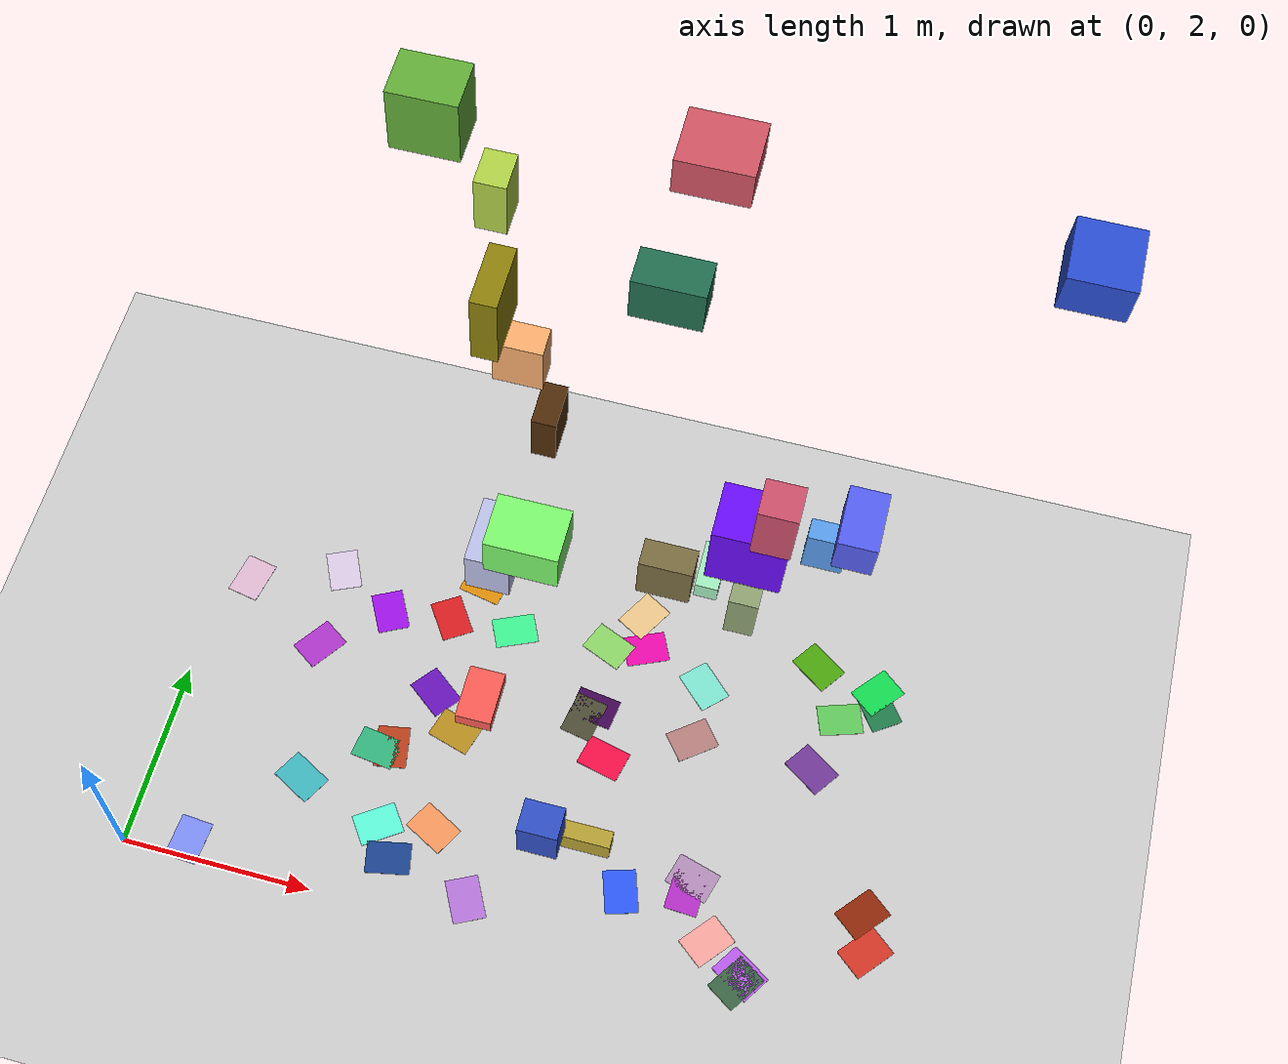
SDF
<sdf version="1.9">
 <world name="default">
  <model name="ground_plane">
   <static>true</static>
   <link name="link">
    <collision name="collision">
     <geometry><plane><normal>0 0 1</normal><size>1 1</size></plane></geometry>
    </collision>
    <visual name="visual">
     <geometry><plane><normal>0 0 1</normal><size>500 500</size></plane></geometry>
     <material>
      <ambient>0.8 0.8 0.8 1</ambient>
      <diffuse>0.8 0.8 0.8 1</diffuse>
      <specular>0.8 0.8 0.8 1</specular>
     </material>
    </visual>
    <inertial>
     <mass>1</mass>
     <inertia><ixx>1</ixx><ixy>0</ixy><ixz>0</ixz><iyy>1</iyy><iyz>0</iyz><izz>1</izz></inertia>
    </inertial>
   </link>
  </model>
  <model name="vio_landmark_4">
   <static>true</static>
   <pose>2.370946086831151 3.603568981077167 4.1404926267973075 0 0 0</pose>
   <link name="landmark">
    <visual name="box">
     <geometry><box><size>0.2795742839165804 0.23677774113252498 0.15660608165361206</size></box></geometry>
     <material>
      <ambient>0.8178608579160832 0.32771409896818304 0.3856673557343917 1</ambient>
      <diffuse>0.8178608579160832 0.32771409896818304 0.3856673557343917 1</diffuse>
     </material>
    </visual>
    <collision name="box">
     <geometry><box><size>0.2795742839165804 0.23677774113252498 0.15660608165361206</size></box></geometry>
    </collision>
   </link>
  </model>
  <model name="vio_landmark_9">
   <static>true</static>
   <pose>2.6230435518524304 3.202668108795817 2.057954493219551 0 0 0</pose>
   <link name="landmark">
    <visual name="box">
     <geometry><box><size>0.09970207891658353 0.2193948262190606 0.08942269251568812</size></box></geometry>
     <material>
      <ambient>0.6371044679635045 0.9238934703578437 0.7449748719432737 1</ambient>
      <diffuse>0.6371044679635045 0.9238934703578437 0.7449748719432737 1</diffuse>
     </material>
    </visual>
    <collision name="box">
     <geometry><box><size>0.09970207891658353 0.2193948262190606 0.08942269251568812</size></box></geometry>
    </collision>
   </link>
  </model>
  <model name="vio_landmark_10">
   <static>true</static>
   <pose>2.138854517946935 2.2545616455574944 1.0374150145814094 0 0 0</pose>
   <link name="landmark">
    <visual name="box">
     <geometry><box><size>0.19111792528161858 0.15823154075160312 0.25378358252799094</size></box></geometry>
     <material>
      <ambient>0.18490734483723215 0.30866854836649965 0.7710220489893403 1</ambient>
      <diffuse>0.18490734483723215 0.30866854836649965 0.7710220489893403 1</diffuse>
     </material>
    </visual>
    <collision name="box">
     <geometry><box><size>0.19111792528161858 0.15823154075160312 0.25378358252799094</size></box></geometry>
    </collision>
   </link>
  </model>
  <model name="vio_landmark_11">
   <static>true</static>
   <pose>2.7891176703076654 3.315285663557767 1.7152525724528496 0 0 0</pose>
   <link name="landmark">
    <visual name="box">
     <geometry><box><size>0.1320885522402665 0.255460419186655 0.2708116082599149</size></box></geometry>
     <material>
      <ambient>0.5575309282547783 0.6334797692749219 0.4442420330304337 1</ambient>
      <diffuse>0.5575309282547783 0.6334797692749219 0.4442420330304337 1</diffuse>
     </material>
    </visual>
    <collision name="box">
     <geometry><box><size>0.1320885522402665 0.255460419186655 0.2708116082599149</size></box></geometry>
    </collision>
   </link>
  </model>
  <model name="vio_landmark_16">
   <static>true</static>
   <pose>1.9465094470825615 2.7202543734946287 2.83502094072045 0 0 0</pose>
   <link name="landmark">
    <visual name="box">
     <geometry><box><size>0.29462341904940376 0.22644796169689996 0.19710107083741374</size></box></geometry>
     <material>
      <ambient>0.48544354762706 0.9694558172058504 0.4214892360053247 1</ambient>
      <diffuse>0.48544354762706 0.9694558172058504 0.4214892360053247 1</diffuse>
     </material>
    </visual>
    <collision name="box">
     <geometry><box><size>0.29462341904940376 0.22644796169689996 0.19710107083741374</size></box></geometry>
    </collision>
   </link>
  </model>
  <model name="vio_landmark_19">
   <static>true</static>
   <pose>1.877126461623658 3.3000720894933764 2.7759876341766714 0 0 0</pose>
   <link name="landmark">
    <visual name="box">
     <geometry><box><size>0.10170459680282255 0.19284788619064502 0.22981286475033208</size></box></geometry>
     <material>
      <ambient>0.3134249808974049 0.170987625439518 0.038284662760652954 1</ambient>
      <diffuse>0.3134249808974049 0.170987625439518 0.038284662760652954 1</diffuse>
     </material>
    </visual>
    <collision name="box">
     <geometry><box><size>0.10170459680282255 0.19284788619064502 0.22981286475033208</size></box></geometry>
    </collision>
   </link>
  </model>
  <model name="vio_landmark_25">
   <static>true</static>
   <pose>2.2887853095887856 3.3997144154624968 3.646768896638865 0 0 0</pose>
   <link name="landmark">
    <visual name="box">
     <geometry><box><size>0.2767317482694681 0.15674135461344424 0.19976900210306192</size></box></geometry>
     <material>
      <ambient>0.12901171565809047 0.4294346864572889 0.31009301270686407 1</ambient>
      <diffuse>0.12901171565809047 0.4294346864572889 0.31009301270686407 1</diffuse>
     </material>
    </visual>
    <collision name="box">
     <geometry><box><size>0.2767317482694681 0.15674135461344424 0.19976900210306192</size></box></geometry>
    </collision>
   </link>
  </model>
  <model name="vio_landmark_29">
   <static>true</static>
   <pose>1.6319476546174094 3.445762857621733 3.914232768123484 0 0 0</pose>
   <link name="landmark">
    <visual name="box">
     <geometry><box><size>0.11991886087015154 0.15398315070084104 0.24179815717374847</size></box></geometry>
     <material>
      <ambient>0.6896176604098586 0.8222177459021623 0.27267863111718366 1</ambient>
      <diffuse>0.6896176604098586 0.8222177459021623 0.27267863111718366 1</diffuse>
     </material>
    </visual>
    <collision name="box">
     <geometry><box><size>0.11991886087015154 0.15398315070084104 0.24179815717374847</size></box></geometry>
    </collision>
   </link>
  </model>
  <model name="vio_landmark_45">
   <static>true</static>
   <pose>1.8677772837458804 2.919673336145708 3.7559673025293927 0 0 0</pose>
   <link name="landmark">
    <visual name="box">
     <geometry><box><size>0.1794754611056314 0.11096249770346325 0.20498965172216438</size></box></geometry>
     <material>
      <ambient>0.9778430005748544 0.682212724552945 0.43010446704376515 1</ambient>
      <diffuse>0.9778430005748544 0.682212724552945 0.43010446704376515 1</diffuse>
     </material>
    </visual>
    <collision name="box">
     <geometry><box><size>0.1794754611056314 0.11096249770346325 0.20498965172216438</size></box></geometry>
    </collision>
   </link>
  </model>
  <model name="vio_landmark_46">
   <static>true</static>
   <pose>2.8477707649690385 2.185687511228892 4.3092426886605475 0 0 0</pose>
   <link name="landmark">
    <visual name="box">
     <geometry><box><size>0.12286361514751173 0.12268544379871743 0.21982570262989531</size></box></geometry>
     <material>
      <ambient>0.7989267256334358 0.3086272863402717 0.41494403635350185 1</ambient>
      <diffuse>0.7989267256334358 0.3086272863402717 0.41494403635350185 1</diffuse>
     </material>
    </visual>
    <collision name="box">
     <geometry><box><size>0.12286361514751173 0.12268544379871743 0.21982570262989531</size></box></geometry>
    </collision>
   </link>
  </model>
  <model name="vio_landmark_52">
   <static>true</static>
   <pose>1.4376661877006054 3.374250932114033 4.359881568526748 0 0 0</pose>
   <link name="landmark">
    <visual name="box">
     <geometry><box><size>0.2477607721956756 0.18850469139892306 0.2606621854305076</size></box></geometry>
     <material>
      <ambient>0.3861335386197128 0.6833953707320868 0.22163453550473433 1</ambient>
      <diffuse>0.3861335386197128 0.6833953707320868 0.22163453550473433 1</diffuse>
     </material>
    </visual>
    <collision name="box">
     <geometry><box><size>0.2477607721956756 0.18850469139892306 0.2606621854305076</size></box></geometry>
    </collision>
   </link>
  </model>
  <model name="vio_landmark_63">
   <static>true</static>
   <pose>3.168425733786723 3.193363673718898 2.6758438155970006 0 0 0</pose>
   <link name="landmark">
    <visual name="box">
     <geometry><box><size>0.16196297787904973 0.26867638811986616 0.18241796599000085</size></box></geometry>
     <material>
      <ambient>0.33066501033809503 0.3679711837358858 0.9442505326448224 1</ambient>
      <diffuse>0.33066501033809503 0.3679711837358858 0.9442505326448224 1</diffuse>
     </material>
    </visual>
    <collision name="box">
     <geometry><box><size>0.16196297787904973 0.26867638811986616 0.18241796599000085</size></box></geometry>
    </collision>
   </link>
  </model>
  <model name="vio_landmark_67">
   <static>true</static>
   <pose>2.2804564434641383 2.544857253858746 0.2545637046025293 0 0 0</pose>
   <link name="landmark">
    <visual name="box">
     <geometry><box><size>0.2979009874430153 0.09011940012123984 0.14490294254777106</size></box></geometry>
     <material>
      <ambient>0.7097642324857558 0.622095366451183 0.2005406183648757 1</ambient>
      <diffuse>0.7097642324857558 0.622095366451183 0.2005406183648757 1</diffuse>
     </material>
    </visual>
    <collision name="box">
     <geometry><box><size>0.2979009874430153 0.09011940012123984 0.14490294254777106</size></box></geometry>
    </collision>
   </link>
  </model>
  <model name="vio_landmark_71">
   <static>true</static>
   <pose>1.7498570929101522 2.9509003827950355 2.288526182771015 0 0 0</pose>
   <link name="landmark">
    <visual name="box">
     <geometry><box><size>0.18796727562980614 0.29498013851881166 0.22642420160205734</size></box></geometry>
     <material>
      <ambient>0.7311828324549594 0.7514040956201373 0.9090737805614186 1</ambient>
      <diffuse>0.7311828324549594 0.7514040956201373 0.9090737805614186 1</diffuse>
     </material>
    </visual>
    <collision name="box">
     <geometry><box><size>0.18796727562980614 0.29498013851881166 0.22642420160205734</size></box></geometry>
    </collision>
   </link>
  </model>
  <model name="vio_landmark_73">
   <static>true</static>
   <pose>2.784714233916889 2.252193125106589 4.056314996551598 0 0 0</pose>
   <link name="landmark">
    <visual name="box">
     <geometry><box><size>0.23868736786528671 0.19016040050924168 0.25721572510534624</size></box></geometry>
     <material>
      <ambient>0.4117603914345275 0.037988891166844174 0.9740515511861959 1</ambient>
      <diffuse>0.4117603914345275 0.037988891166844174 0.9740515511861959 1</diffuse>
     </material>
    </visual>
    <collision name="box">
     <geometry><box><size>0.23868736786528671 0.19016040050924168 0.25721572510534624</size></box></geometry>
    </collision>
   </link>
  </model>
  <model name="vio_landmark_74">
   <static>true</static>
   <pose>3.068245274017137 3.3639812028391214 2.202775017025206 0 0 0</pose>
   <link name="landmark">
    <visual name="box">
     <geometry><box><size>0.17310254381502657 0.09441286219376441 0.23121107928154</size></box></geometry>
     <material>
      <ambient>0.34507830181272636 0.6119726558485701 0.9221345309419235 1</ambient>
      <diffuse>0.34507830181272636 0.6119726558485701 0.9221345309419235 1</diffuse>
     </material>
    </visual>
    <collision name="box">
     <geometry><box><size>0.17310254381502657 0.09441286219376441 0.23121107928154</size></box></geometry>
    </collision>
   </link>
  </model>
  <model name="vio_landmark_79">
   <static>true</static>
   <pose>1.8005624927816606 2.8290145524177293 4.140549426983702 0 0 0</pose>
   <link name="landmark">
    <visual name="box">
     <geometry><box><size>0.09186775431105097 0.23978876826838347 0.29171380617296416</size></box></geometry>
     <material>
      <ambient>0.5554868480147453 0.5072824445185306 0.039070805779660454 1</ambient>
      <diffuse>0.5554868480147453 0.5072824445185306 0.039070805779660454 1</diffuse>
     </material>
    </visual>
    <collision name="box">
     <geometry><box><size>0.09186775431105097 0.23978876826838347 0.29171380617296416</size></box></geometry>
    </collision>
   </link>
  </model>
  <model name="vio_landmark_81">
   <static>true</static>
   <pose>2.4027969515466143 3.5214767233511557 1.3716006061338184 0 0 0</pose>
   <link name="landmark">
    <visual name="box">
     <geometry><box><size>0.2566152619869841 0.13773542352370124 0.26408155255170757</size></box></geometry>
     <material>
      <ambient>0.47764401911118076 0.42226740564007403 0.2555034696007267 1</ambient>
      <diffuse>0.47764401911118076 0.42226740564007403 0.2555034696007267 1</diffuse>
     </material>
    </visual>
    <collision name="box">
     <geometry><box><size>0.2566152619869841 0.13773542352370124 0.26408155255170757</size></box></geometry>
    </collision>
   </link>
  </model>
  <model name="vio_landmark_83">
   <static>true</static>
   <pose>3.6544966964380374 3.4190648839453015 4.2134643542295995 0 0 0</pose>
   <link name="landmark">
    <visual name="box">
     <geometry><box><size>0.23090963319544222 0.25433869468131276 0.1528442587942226</size></box></geometry>
     <material>
      <ambient>0.1595230842805506 0.3014897204073622 0.8277428441514726 1</ambient>
      <diffuse>0.1595230842805506 0.3014897204073622 0.8277428441514726 1</diffuse>
     </material>
    </visual>
    <collision name="box">
     <geometry><box><size>0.23090963319544222 0.25433869468131276 0.1528442587942226</size></box></geometry>
    </collision>
   </link>
  </model>
  <model name="vio_landmark_88">
   <static>true</static>
   <pose>1.6920547441776495 2.816531549331682 1.0192291132644367 0 0 0</pose>
   <link name="landmark">
    <visual name="box">
     <geometry><box><size>0.17336362437976155 0.2658415657717615 0.08038916459012904</size></box></geometry>
     <material>
      <ambient>0.9717225170512004 0.356713474524372 0.32633227826678673 1</ambient>
      <diffuse>0.9717225170512004 0.356713474524372 0.32633227826678673 1</diffuse>
     </material>
    </visual>
    <collision name="box">
     <geometry><box><size>0.17336362437976155 0.2658415657717615 0.08038916459012904</size></box></geometry>
    </collision>
   </link>
  </model>
  <model name="vio_floor_patch_0">
   <static>true</static>
   <pose>3.1890793559051964 2.0996986342430084 .002 0 0 2.5488715888499622</pose>
   <link name="patch">
    <visual name="patch">
     <geometry><box><size>.17 .23 .002</size></box></geometry>
     <material>
      <ambient>0.2286790240139822 0.39778474627471927 0.2659508268708953 1</ambient>
      <diffuse>0.2286790240139822 0.39778474627471927 0.2659508268708953 1</diffuse>
     </material>
    </visual>
   </link>
  </model>
  <model name="vio_floor_patch_1">
   <static>true</static>
   <pose>2.2611145026988932 3.090825518108458 .002 0 0 1.332862709407927</pose>
   <link name="patch">
    <visual name="patch">
     <geometry><box><size>.17 .23 .002</size></box></geometry>
     <material>
      <ambient>0.9613789274647551 0.055384668970573855 0.27820397613389153 1</ambient>
      <diffuse>0.9613789274647551 0.055384668970573855 0.27820397613389153 1</diffuse>
     </material>
    </visual>
   </link>
  </model>
  <model name="vio_floor_patch_12">
   <static>true</static>
   <pose>2.3238016735571856 3.7656091105672678 .002 0 0 -1.1425868301934723</pose>
   <link name="patch">
    <visual name="patch">
     <geometry><box><size>.17 .23 .002</size></box></geometry>
     <material>
      <ambient>0.9318167629967828 0.0328605749999938 0.6789023062735011 1</ambient>
      <diffuse>0.9318167629967828 0.0328605749999938 0.6789023062735011 1</diffuse>
     </material>
    </visual>
   </link>
  </model>
  <model name="vio_floor_patch_15">
   <static>true</static>
   <pose>1.2314757146347095 2.430099587846673 .002 0 0 -0.9625512751484009</pose>
   <link name="patch">
    <visual name="patch">
     <geometry><box><size>.17 .23 .002</size></box></geometry>
     <material>
      <ambient>0.3626414620438619 0.972904999613098 0.8474503154707277 1</ambient>
      <diffuse>0.3626414620438619 0.972904999613098 0.8474503154707277 1</diffuse>
     </material>
    </visual>
   </link>
  </model>
  <model name="vio_floor_patch_30">
   <static>true</static>
   <pose>1.5137087651852437 2.4850197637459255 .002 0 0 1.0751748569438226</pose>
   <link name="patch">
    <visual name="patch">
     <geometry><box><size>.17 .23 .002</size></box></geometry>
     <material>
      <ambient>0.9668927231398151 0.5903903566245652 0.3691663084014255 1</ambient>
      <diffuse>0.9668927231398151 0.5903903566245652 0.3691663084014255 1</diffuse>
     </material>
    </visual>
   </link>
  </model>
  <model name="vio_floor_patch_39">
   <static>true</static>
   <pose>3.24135415631223 3.905933442273029 .002 0 0 -2.1824984027624676</pose>
   <link name="patch">
    <visual name="patch">
     <geometry><box><size>.17 .23 .002</size></box></geometry>
     <material>
      <ambient>0.29872502286389774 0.6474421818168111 0.0518857640496853 1</ambient>
      <diffuse>0.29872502286389774 0.6474421818168111 0.0518857640496853 1</diffuse>
     </material>
    </visual>
   </link>
  </model>
  <model name="vio_floor_patch_48">
   <static>true</static>
   <pose>2.8437913696691925 2.4959631451469866 .002 0 0 -0.06006872202477709</pose>
   <link name="patch">
    <visual name="patch">
     <geometry><box><size>.17 .23 .002</size></box></geometry>
     <material>
      <ambient>0.7050469227309437 0.18246496827984862 0.7749545358106681 1</ambient>
      <diffuse>0.7050469227309437 0.18246496827984862 0.7749545358106681 1</diffuse>
     </material>
    </visual>
   </link>
  </model>
  <model name="vio_floor_patch_50">
   <static>true</static>
   <pose>1.1035501333502877 2.834581015177166 .002 0 0 1.431991958597862</pose>
   <link name="patch">
    <visual name="patch">
     <geometry><box><size>.17 .23 .002</size></box></geometry>
     <material>
      <ambient>0.20203876762878376 0.7028096814849557 0.49115286996444213 1</ambient>
      <diffuse>0.20203876762878376 0.7028096814849557 0.49115286996444213 1</diffuse>
     </material>
    </visual>
   </link>
  </model>
  <model name="vio_floor_patch_51">
   <static>true</static>
   <pose>0.6239028450091637 3.3314579287332684 .002 0 0 -0.6084057119294322</pose>
   <link name="patch">
    <visual name="patch">
     <geometry><box><size>.17 .23 .002</size></box></geometry>
     <material>
      <ambient>0.6816135346200891 0.20174509028957022 0.7919578479123669 1</ambient>
      <diffuse>0.6816135346200891 0.20174509028957022 0.7919578479123669 1</diffuse>
     </material>
    </visual>
   </link>
  </model>
  <model name="vio_floor_patch_53">
   <static>true</static>
   <pose>2.5228133191968807 2.4072751350627835 .002 0 0 -2.836138307484503</pose>
   <link name="patch">
    <visual name="patch">
     <geometry><box><size>.17 .23 .002</size></box></geometry>
     <material>
      <ambient>0.175120390266208 0.34780604872707427 0.970702458490919 1</ambient>
      <diffuse>0.175120390266208 0.34780604872707427 0.970702458490919 1</diffuse>
     </material>
    </visual>
   </link>
  </model>
  <model name="vio_floor_patch_60">
   <static>true</static>
   <pose>1.616188513981036 3.6860511629077033 .002 0 0 1.9973953000594373</pose>
   <link name="patch">
    <visual name="patch">
     <geometry><box><size>.17 .23 .002</size></box></geometry>
     <material>
      <ambient>0.240883534376545 0.9513034338927242 0.5750903228712257 1</ambient>
      <diffuse>0.240883534376545 0.9513034338927242 0.5750903228712257 1</diffuse>
     </material>
    </visual>
   </link>
  </model>
  <model name="vio_floor_patch_61">
   <static>true</static>
   <pose>3.7775634265515396 2.4223400191455076 .002 0 0 -0.7010774917314957</pose>
   <link name="patch">
    <visual name="patch">
     <geometry><box><size>.17 .23 .002</size></box></geometry>
     <material>
      <ambient>0.8251186359561988 0.21202569434995858 0.14848632796504477 1</ambient>
      <diffuse>0.8251186359561988 0.21202569434995858 0.14848632796504477 1</diffuse>
     </material>
    </visual>
   </link>
  </model>
  <model name="vio_floor_patch_73">
   <static>true</static>
   <pose>3.323014146855953 3.3174049529736607 .002 0 0 -2.181490221828836</pose>
   <link name="patch">
    <visual name="patch">
     <geometry><box><size>.17 .23 .002</size></box></geometry>
     <material>
      <ambient>0.448532861992856 0.21889069071721862 0.5957296302091235 1</ambient>
      <diffuse>0.448532861992856 0.21889069071721862 0.5957296302091235 1</diffuse>
     </material>
    </visual>
   </link>
  </model>
  <model name="vio_floor_patch_77">
   <static>true</static>
   <pose>0.6104202267714711 3.794762654224784 .002 0 0 -2.7122637247534644</pose>
   <link name="patch">
    <visual name="patch">
     <geometry><box><size>.17 .23 .002</size></box></geometry>
     <material>
      <ambient>0.8578207331233707 0.7952278214533071 0.9004103961273152 1</ambient>
      <diffuse>0.8578207331233707 0.7952278214533071 0.9004103961273152 1</diffuse>
     </material>
    </visual>
   </link>
  </model>
  <model name="vio_floor_patch_78">
   <static>true</static>
   <pose>3.7269979684976766 2.614307319035148 .002 0 0 -0.7036474442932175</pose>
   <link name="patch">
    <visual name="patch">
     <geometry><box><size>.17 .23 .002</size></box></geometry>
     <material>
      <ambient>0.5594653875843751 0.1523669507893352 0.035715248770467445 1</ambient>
      <diffuse>0.5594653875843751 0.1523669507893352 0.035715248770467445 1</diffuse>
     </material>
    </visual>
   </link>
  </model>
  <model name="vio_floor_patch_80">
   <static>true</static>
   <pose>2.145653613304188 3.3568834704892216 .002 0 0 -1.7124718189155281</pose>
   <link name="patch">
    <visual name="patch">
     <geometry><box><size>.17 .23 .002</size></box></geometry>
     <material>
      <ambient>0.259675444490906 0.02629625977225672 0.33194277474951783 1</ambient>
      <diffuse>0.259675444490906 0.02629625977225672 0.33194277474951783 1</diffuse>
     </material>
    </visual>
   </link>
  </model>
  <model name="vio_floor_patch_83">
   <static>true</static>
   <pose>1.1746934202674495 2.8603243710345243 .002 0 0 -2.9682512800514553</pose>
   <link name="patch">
    <visual name="patch">
     <geometry><box><size>.17 .23 .002</size></box></geometry>
     <material>
      <ambient>0.7251757872324012 0.24570455081159603 0.11026204342408999 1</ambient>
      <diffuse>0.7251757872324012 0.24570455081159603 0.11026204342408999 1</diffuse>
     </material>
    </visual>
   </link>
  </model>
  <model name="vio_floor_patch_85">
   <static>true</static>
   <pose>2.103375954784651 3.291609744693538 .002 0 0 -0.18944187433820048</pose>
   <link name="patch">
    <visual name="patch">
     <geometry><box><size>.17 .23 .002</size></box></geometry>
     <material>
      <ambient>0.30329988256266244 0.2987458470454507 0.20764550114348884 1</ambient>
      <diffuse>0.30329988256266244 0.2987458470454507 0.20764550114348884 1</diffuse>
     </material>
    </visual>
   </link>
  </model>
  <model name="vio_floor_patch_95">
   <static>true</static>
   <pose>2.1296385401248727 3.728944386195039 .002 0 0 1.1648634970132021</pose>
   <link name="patch">
    <visual name="patch">
     <geometry><box><size>.17 .23 .002</size></box></geometry>
     <material>
      <ambient>0.5507309205488923 0.8342534270799519 0.4052337320137255 1</ambient>
      <diffuse>0.5507309205488923 0.8342534270799519 0.4052337320137255 1</diffuse>
     </material>
    </visual>
   </link>
  </model>
  <model name="vio_floor_patch_96">
   <static>true</static>
   <pose>0.9313702852314099 3.6192214538592147 .002 0 0 0.47839326853879616</pose>
   <link name="patch">
    <visual name="patch">
     <geometry><box><size>.17 .23 .002</size></box></geometry>
     <material>
      <ambient>0.6192731215223861 0.06898042049720043 0.905263567977169 1</ambient>
      <diffuse>0.6192731215223861 0.06898042049720043 0.905263567977169 1</diffuse>
     </material>
    </visual>
   </link>
  </model>
  <model name="vio_floor_patch_99">
   <static>true</static>
   <pose>0.32185321414083656 2.0948802697028954 .002 0 0 -0.07973250878835048</pose>
   <link name="patch">
    <visual name="patch">
     <geometry><box><size>.17 .23 .002</size></box></geometry>
     <material>
      <ambient>0.4870010616000177 0.5526417357862224 0.9594997369294956 1</ambient>
      <diffuse>0.4870010616000177 0.5526417357862224 0.9594997369294956 1</diffuse>
     </material>
    </visual>
   </link>
  </model>
  <model name="vio_floor_patch_100">
   <static>true</static>
   <pose>1.3070293047832846 3.222905096045026 .002 0 0 -2.2403785975410058</pose>
   <link name="patch">
    <visual name="patch">
     <geometry><box><size>.17 .23 .002</size></box></geometry>
     <material>
      <ambient>0.40518672727737054 0.0745775044714274 0.7322064092651189 1</ambient>
      <diffuse>0.40518672727737054 0.0745775044714274 0.7322064092651189 1</diffuse>
     </material>
    </visual>
   </link>
  </model>
  <model name="vio_floor_patch_101">
   <static>true</static>
   <pose>1.2650243547581155 3.6692208438757055 .002 0 0 0.5856946710431381</pose>
   <link name="patch">
    <visual name="patch">
     <geometry><box><size>.17 .23 .002</size></box></geometry>
     <material>
      <ambient>0.8515264312689313 0.11719292416262132 0.1305461329504107 1</ambient>
      <diffuse>0.8515264312689313 0.11719292416262132 0.1305461329504107 1</diffuse>
     </material>
    </visual>
   </link>
  </model>
  <model name="vio_floor_patch_104">
   <static>true</static>
   <pose>1.7773920695714749 2.1609547297021896 .002 0 0 0.4689210798525396</pose>
   <link name="patch">
    <visual name="patch">
     <geometry><box><size>.17 .23 .002</size></box></geometry>
     <material>
      <ambient>0.7066378417078302 0.45776265669803795 0.8482017218353187 1</ambient>
      <diffuse>0.7066378417078302 0.45776265669803795 0.8482017218353187 1</diffuse>
     </material>
    </visual>
   </link>
  </model>
  <model name="vio_floor_patch_106">
   <static>true</static>
   <pose>0.7706587464094734 2.5728957523592655 .002 0 0 1.0685088932707179</pose>
   <link name="patch">
    <visual name="patch">
     <geometry><box><size>.17 .23 .002</size></box></geometry>
     <material>
      <ambient>0.24535580620080333 0.7113219023392454 0.7477079047795901 1</ambient>
      <diffuse>0.24535580620080333 0.7113219023392454 0.7477079047795901 1</diffuse>
     </material>
    </visual>
   </link>
  </model>
  <model name="vio_floor_patch_111">
   <static>true</static>
   <pose>0.14140169839954742 3.618177115635854 .002 0 0 -0.19213787620374356</pose>
   <link name="patch">
    <visual name="patch">
     <geometry><box><size>.17 .23 .002</size></box></geometry>
     <material>
      <ambient>0.8775580031593424 0.7202116576038018 0.8205543886499401 1</ambient>
      <diffuse>0.8775580031593424 0.7202116576038018 0.8205543886499401 1</diffuse>
     </material>
    </visual>
   </link>
  </model>
  <model name="vio_floor_patch_114">
   <static>true</static>
   <pose>1.383213265171156 3.915864551670799 .002 0 0 -1.7657682915516237</pose>
   <link name="patch">
    <visual name="patch">
     <geometry><box><size>.17 .23 .002</size></box></geometry>
     <material>
      <ambient>0.868695114066184 0.5556891969119223 0.03799055253545006 1</ambient>
      <diffuse>0.868695114066184 0.5556891969119223 0.03799055253545006 1</diffuse>
     </material>
    </visual>
   </link>
  </model>
  <model name="vio_floor_patch_118">
   <static>true</static>
   <pose>1.4707243639450531 3.033318531015879 .002 0 0 -1.8607607455333037</pose>
   <link name="patch">
    <visual name="patch">
     <geometry><box><size>.17 .23 .002</size></box></geometry>
     <material>
      <ambient>0.724074439138997 0.5561249141073611 0.12444381146242574 1</ambient>
      <diffuse>0.724074439138997 0.5561249141073611 0.12444381146242574 1</diffuse>
     </material>
    </visual>
   </link>
  </model>
  <model name="vio_floor_patch_119">
   <static>true</static>
   <pose>2.675269777096963 3.6330446539841255 .002 0 0 0.7874329942312643</pose>
   <link name="patch">
    <visual name="patch">
     <geometry><box><size>.17 .23 .002</size></box></geometry>
     <material>
      <ambient>0.48931574821047225 0.8875905561298532 0.8064875264148662 1</ambient>
      <diffuse>0.48931574821047225 0.8875905561298532 0.8064875264148662 1</diffuse>
     </material>
    </visual>
   </link>
  </model>
  <model name="vio_floor_patch_121">
   <static>true</static>
   <pose>3.198317028853439 2.150103727700442 .002 0 0 0.9925758366459623</pose>
   <link name="patch">
    <visual name="patch">
     <geometry><box><size>.17 .23 .002</size></box></geometry>
     <material>
      <ambient>0.7276893426708271 0.3568561778758125 0.9272301397818943 1</ambient>
      <diffuse>0.7276893426708271 0.3568561778758125 0.9272301397818943 1</diffuse>
     </material>
    </visual>
   </link>
  </model>
  <model name="vio_floor_patch_124">
   <static>true</static>
   <pose>2.684942518650481 3.315019641204847 .002 0 0 -0.9051186737824315</pose>
   <link name="patch">
    <visual name="patch">
     <geometry><box><size>.17 .23 .002</size></box></geometry>
     <material>
      <ambient>0.7118224827081107 0.5018168003443072 0.49207545152108373 1</ambient>
      <diffuse>0.7118224827081107 0.5018168003443072 0.49207545152108373 1</diffuse>
     </material>
    </visual>
   </link>
  </model>
  <model name="vio_floor_patch_127">
   <static>true</static>
   <pose>3.4108469029735495 3.634194526722214 .002 0 0 -1.2473095151479328</pose>
   <link name="patch">
    <visual name="patch">
     <geometry><box><size>.17 .23 .002</size></box></geometry>
     <material>
      <ambient>0.37727533099011373 0.7849852515115882 0.3544004213997514 1</ambient>
      <diffuse>0.37727533099011373 0.7849852515115882 0.3544004213997514 1</diffuse>
     </material>
    </visual>
   </link>
  </model>
  <model name="vio_floor_patch_130">
   <static>true</static>
   <pose>1.3367422330496568 2.2685318508802466 .002 0 0 1.7716117011648769</pose>
   <link name="patch">
    <visual name="patch">
     <geometry><box><size>.17 .23 .002</size></box></geometry>
     <material>
      <ambient>0.09847184384403913 0.2621964334331667 0.5607913659295112 1</ambient>
      <diffuse>0.09847184384403913 0.2621964334331667 0.5607913659295112 1</diffuse>
     </material>
    </visual>
   </link>
  </model>
  <model name="vio_floor_patch_141">
   <static>true</static>
   <pose>2.859626937604739 2.5724908351011573 .002 0 0 1.2859258010258379</pose>
   <link name="patch">
    <visual name="patch">
     <geometry><box><size>.17 .23 .002</size></box></geometry>
     <material>
      <ambient>0.6988078987801202 0.5544529271305452 0.7204204571185316 1</ambient>
      <diffuse>0.6988078987801202 0.5544529271305452 0.7204204571185316 1</diffuse>
     </material>
    </visual>
   </link>
  </model>
  <model name="vio_floor_patch_142">
   <static>true</static>
   <pose>3.002184007834426 2.270121262514788 .002 0 0 -0.689262768188188</pose>
   <link name="patch">
    <visual name="patch">
     <geometry><box><size>.17 .23 .002</size></box></geometry>
     <material>
      <ambient>0.9681746078671305 0.6456388213873157 0.6202668365759404 1</ambient>
      <diffuse>0.9681746078671305 0.6456388213873157 0.6202668365759404 1</diffuse>
     </material>
    </visual>
   </link>
  </model>
  <model name="vio_floor_patch_143">
   <static>true</static>
   <pose>3.5762925146919438 3.8385852552706607 .002 0 0 2.4503516322588665</pose>
   <link name="patch">
    <visual name="patch">
     <geometry><box><size>.17 .23 .002</size></box></geometry>
     <material>
      <ambient>0.0707155482152476 0.8549286818213963 0.3106422915866836 1</ambient>
      <diffuse>0.0707155482152476 0.8549286818213963 0.3106422915866836 1</diffuse>
     </material>
    </visual>
   </link>
  </model>
  <model name="vio_floor_patch_144">
   <static>true</static>
   <pose>3.5947647550473407 3.7510968637163487 .002 0 0 -2.5294234419769426</pose>
   <link name="patch">
    <visual name="patch">
     <geometry><box><size>.17 .23 .002</size></box></geometry>
     <material>
      <ambient>0.1250812662575013 0.48428710964745975 0.29063387347917885 1</ambient>
      <diffuse>0.1250812662575013 0.48428710964745975 0.29063387347917885 1</diffuse>
     </material>
    </visual>
   </link>
  </model>
  <model name="vio_floor_patch_145">
   <static>true</static>
   <pose>2.269583857556424 3.9554042615609566 .002 0 0 2.6158626014177773</pose>
   <link name="patch">
    <visual name="patch">
     <geometry><box><size>.17 .23 .002</size></box></geometry>
     <material>
      <ambient>0.9239663828830225 0.7752872660698374 0.5347625419102915 1</ambient>
      <diffuse>0.9239663828830225 0.7752872660698374 0.5347625419102915 1</diffuse>
     </material>
    </visual>
   </link>
  </model>
 </world>
</sdf>
